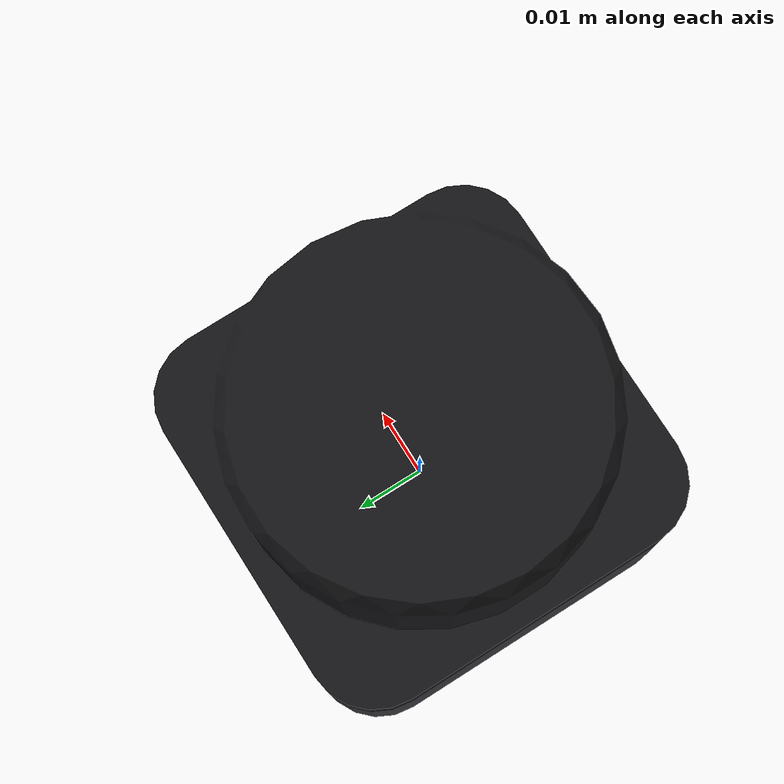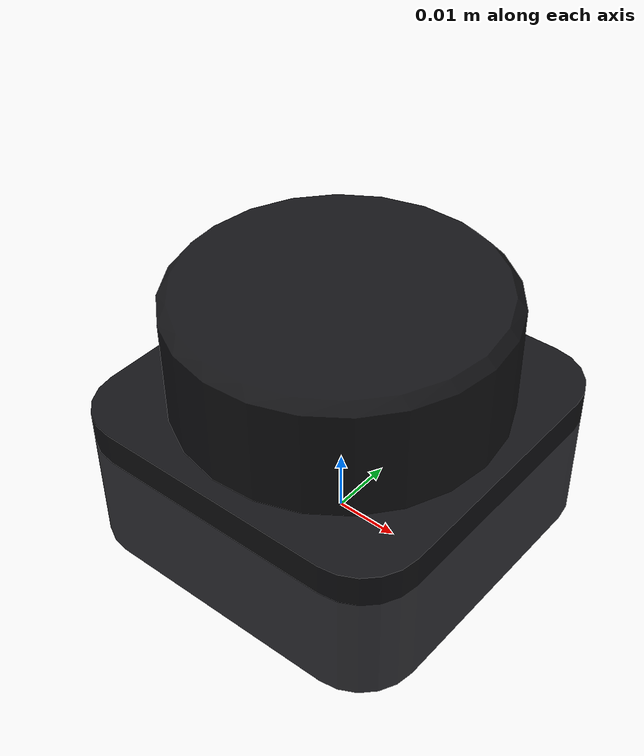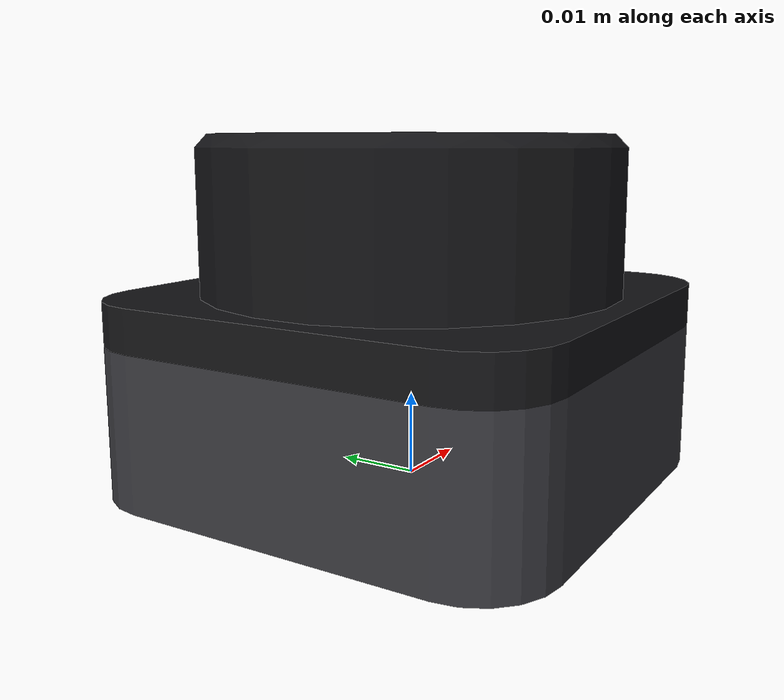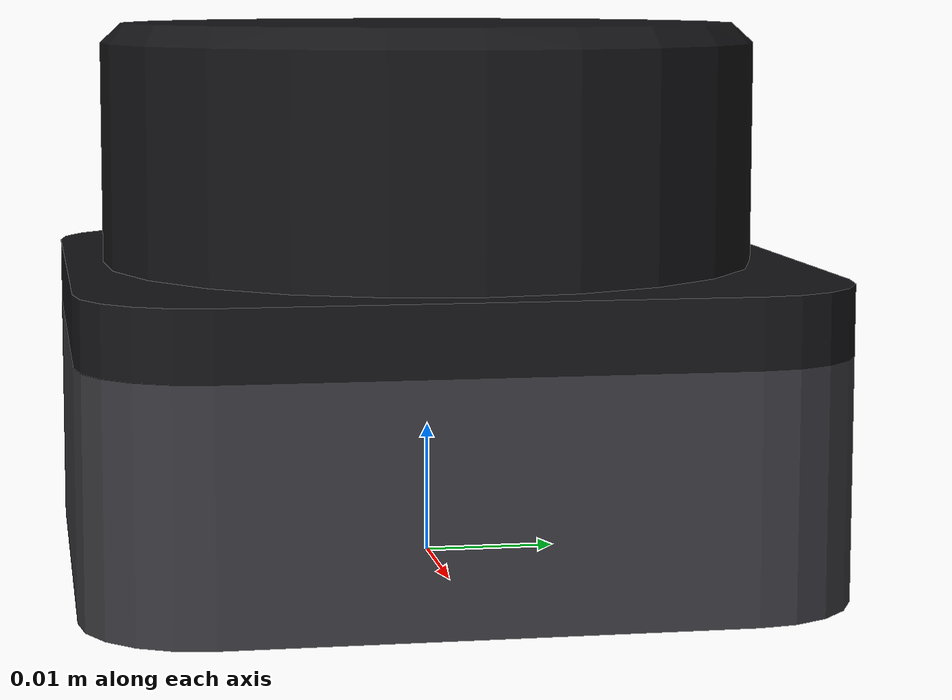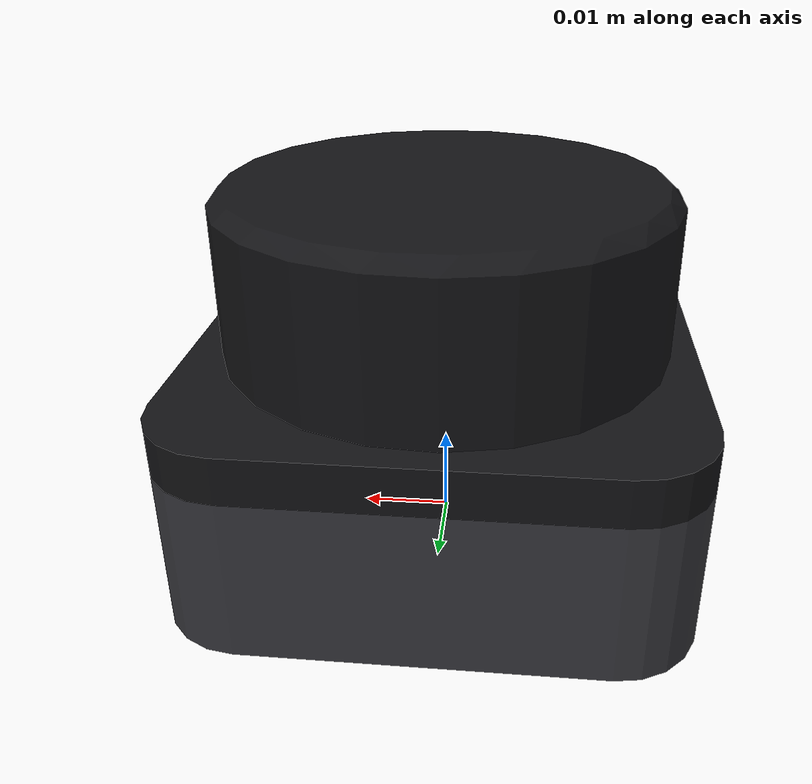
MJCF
<mujoco model="rplidar_c1">
  <compiler angle="radian" meshdir="meshes" autolimits="true"/>

  <asset>
    <material name="c1__dark_mat" rgba="0.08 0.08 0.09 1"/>
    <material name="c1__light_mat" rgba="0.22 0.22 0.24 1"/>
    <mesh name="c1__dark" file="c1__dark.obj"/>
    <mesh name="c1__light" file="c1__light.obj"/>
  </asset>

  <worldbody>
    <body name="mount">
      <inertial pos="0 0 0.02065" mass="0.11" diaginertia="0.000044 0.000044 0.0000567"/>
      <geom name="rplidar_c1_visual_0" type="mesh" mesh="c1__dark" material="c1__dark_mat"
            contype="0" conaffinity="0"/>
      <geom name="rplidar_c1_visual_1" type="mesh" mesh="c1__light" material="c1__light_mat"
            contype="0" conaffinity="0"/>
      <!-- The vendor's own collision box over the 55.6 x 55.6 x 41.3 mm housing. -->
      <geom name="rplidar_c1_collision" type="box" pos="0 0 0.02065" size="0.0278 0.0278 0.02065" group="3"/>
      <!-- The vendor scan frame `laser`: 32 mm up and turned half a revolution.
           Keep in step with the manifest's `frames:` entry. -->
      <site name="scan" pos="0 0 0.032" quat="0 0 0 1" size="0.005"/>
    </body>
  </worldbody>
</mujoco>
